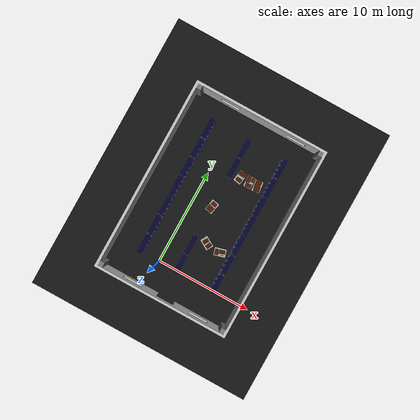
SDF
<?xml version="1.0" ?>
<sdf version="1.6">
  <model name="decenter_ware_low">
    <static>true</static>
    <link name="link">
      <collision name="collision">
        <pose>0 0 0 0 0 0</pose>
        <geometry>
          <mesh>
            <uri>model://decenter_warehouse_low/meshes/decenter_ware.dae</uri>
          </mesh>
        </geometry>
      </collision>
      <visual name="visual">
        <pose>0 0 0 0 0 0</pose>
        <geometry>
          <mesh>
            <uri>model://decenter_warehouse_low/meshes/decenter_ware.dae</uri>
          </mesh>
        </geometry>
      </visual>
    </link>
  </model>
</sdf>
